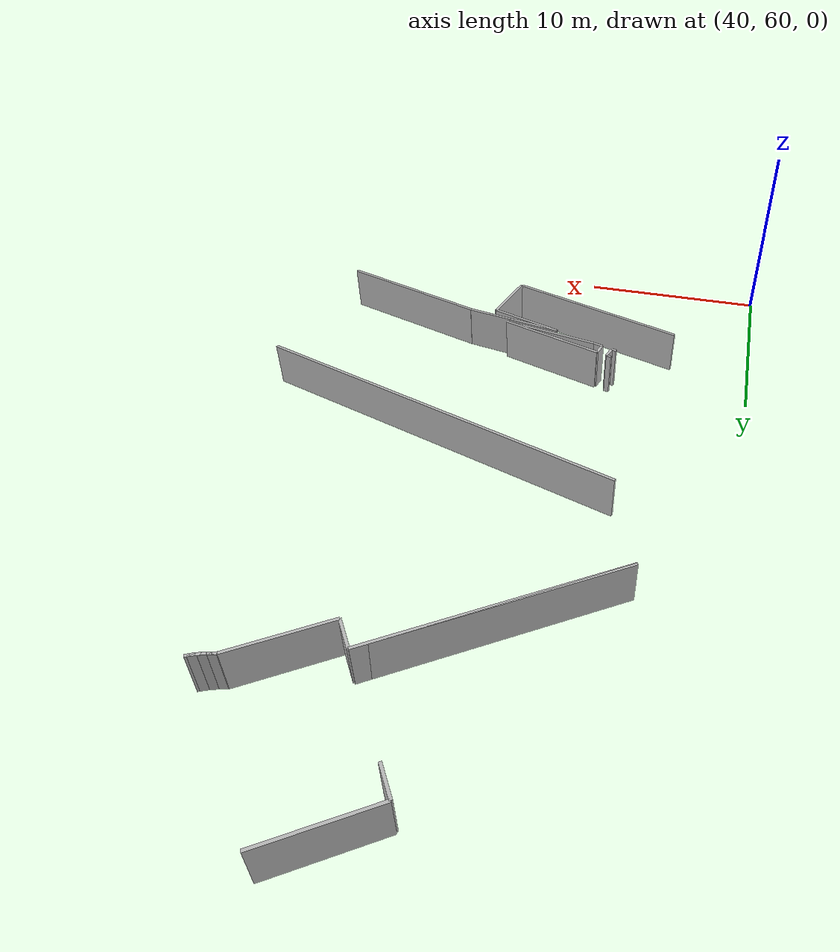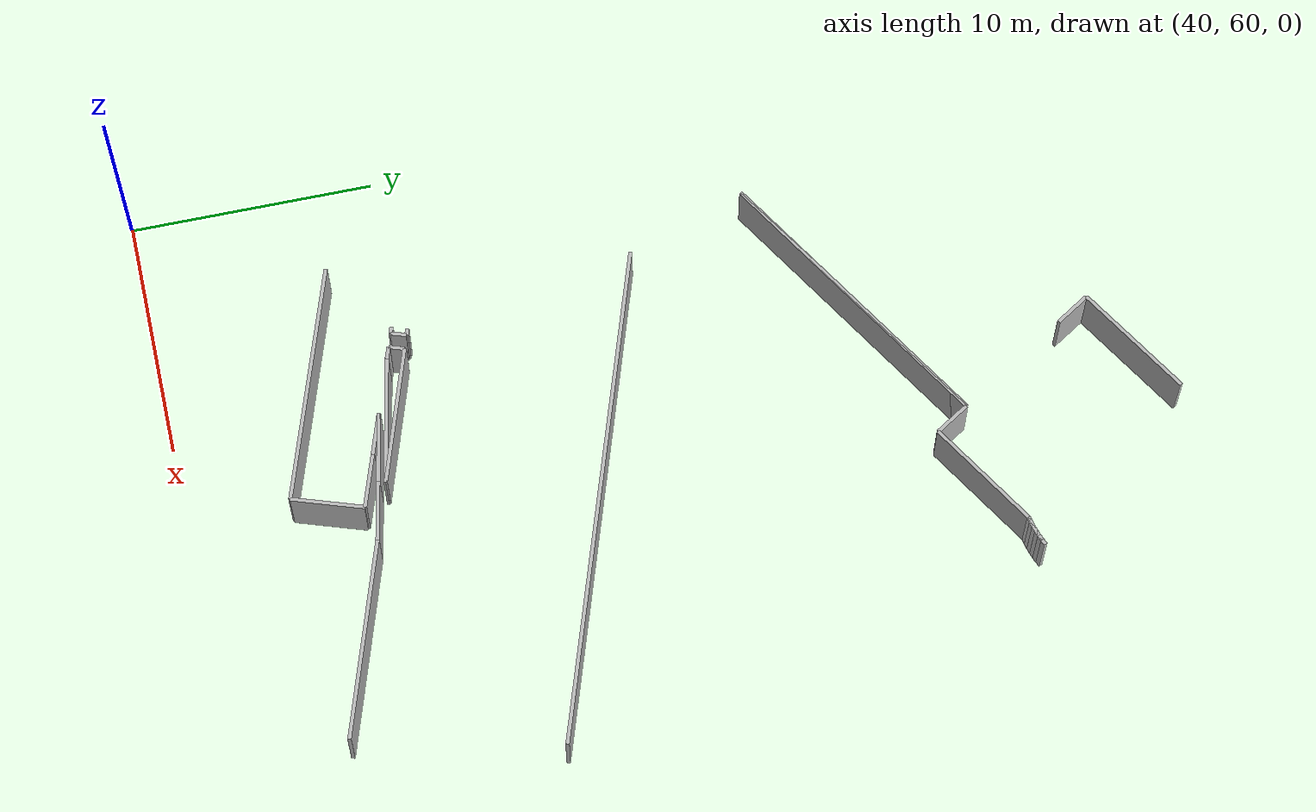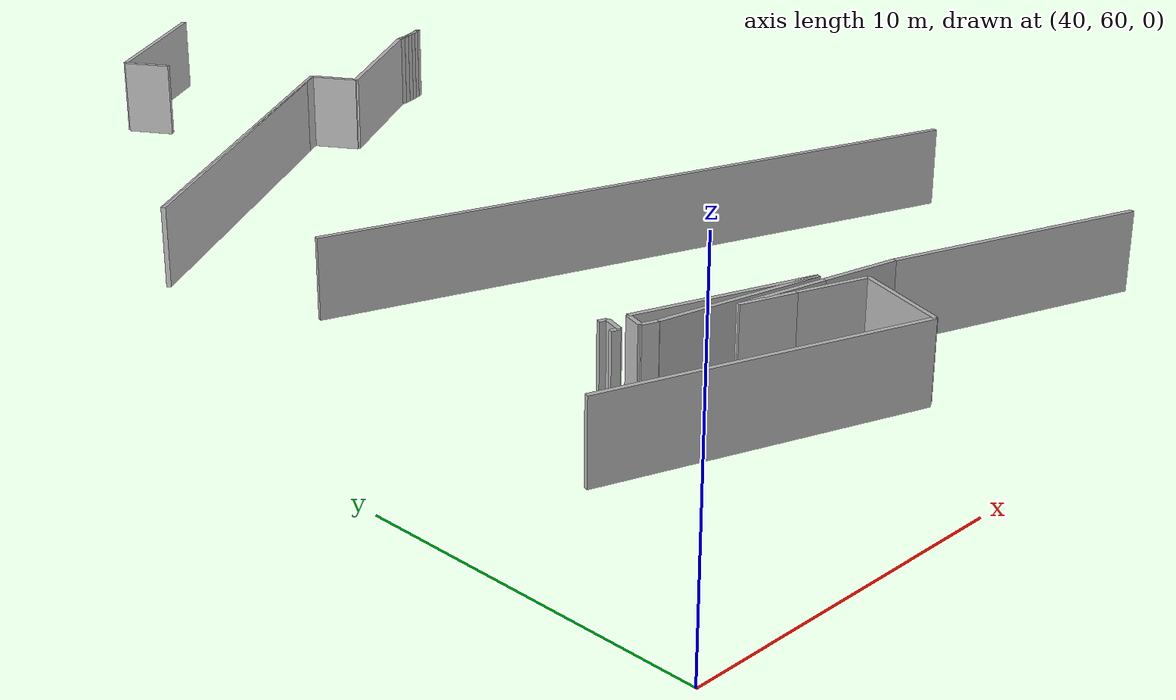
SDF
<sdf version="1.6">
 <model name="sps_0602">
  <static>1</static>
  <allow_auto_disable>0</allow_auto_disable>
  <link name="Wall15">
   <collision name="collision"><geometry><box><size>0.26993 0.15 2.5</size></box></geometry></collision>
   <visual name="visual">
    <geometry><box><size>0.26993 0.15 2.5</size></box></geometry>
    <transparency>0.0</transparency>
   </visual>
   <pose>47.8259 70.2052 1.25 0 0 -0.315673</pose>
  </link>
  <link name="Wall16">
   <collision name="collision"><geometry><box><size>0.649519 0.15 2.5</size></box></geometry></collision>
   <visual name="visual">
    <geometry><box><size>0.649519 0.15 2.5</size></box></geometry>
    <transparency>0.0</transparency>
   </visual>
   <pose>48.4228 69.6688 1.25 0 -0 1.25095</pose>
  </link>
  <link name="Wall109">
   <collision name="collision"><geometry><box><size>0.269889 0.15 2.5</size></box></geometry></collision>
   <visual name="visual">
    <geometry><box><size>0.269889 0.15 2.5</size></box></geometry>
    <transparency>0.0</transparency>
   </visual>
   <pose>47.6243 69.5904 1.25 0 -0 2.8242</pose>
  </link>
  <link name="Wall187">
   <collision name="collision"><geometry><box><size>5.337 0.15 2.5</size></box></geometry></collision>
   <visual name="visual">
    <geometry><box><size>5.337 0.15 2.5</size></box></geometry>
    <transparency>0.0</transparency>
   </visual>
   <pose>51.4278 68.6879 1.25 0 0 -0.19276</pose>
  </link>
  <link name="Wall188">
   <collision name="collision"><geometry><box><size>5.80805 0.15 2.5</size></box></geometry></collision>
   <visual name="visual">
    <geometry><box><size>5.80805 0.15 2.5</size></box></geometry>
    <transparency>0.0</transparency>
   </visual>
   <pose>51.2858 69.0769 1.25 0 0 -0.315167</pose>
  </link>
  <link name="Wall276">
   <collision name="collision"><geometry><box><size>0.514026 0.15 2.5</size></box></geometry></collision>
   <visual name="visual">
    <geometry><box><size>0.514026 0.15 2.5</size></box></geometry>
    <transparency>0.0</transparency>
   </visual>
   <pose>48.5647 69.2798 1.25 0 0 -0.319347</pose>
  </link>
  <link name="Wall343">
   <collision name="collision"><geometry><box><size>3.00012 0.15 2.5</size></box></geometry></collision>
   <visual name="visual">
    <geometry><box><size>3.00012 0.15 2.5</size></box></geometry>
    <transparency>0.0</transparency>
   </visual>
   <pose>54.4389 65.7577 1.25 0 0 -1.89019</pose>
  </link>
  <link name="Wall344">
   <collision name="collision"><geometry><box><size>1.78351 0.15 2.5</size></box></geometry></collision>
   <visual name="visual">
    <geometry><box><size>1.78351 0.15 2.5</size></box></geometry>
    <transparency>0.0</transparency>
   </visual>
   <pose>51.912 68.173 1.25 0 0 -0.319281</pose>
  </link>
  <link name="Wall345">
   <collision name="collision"><geometry><box><size>2.26574 0.15 2.5</size></box></geometry></collision>
   <visual name="visual">
    <geometry><box><size>2.26574 0.15 2.5</size></box></geometry>
    <transparency>0.0</transparency>
   </visual>
   <pose>53.8343 67.5375 1.25 0 0 -0.319281</pose>
  </link>
  <link name="Wall425">
   <collision name="collision"><geometry><box><size>2.92208 0.15 2.5</size></box></geometry></collision>
   <visual name="visual">
    <geometry><box><size>2.92208 0.15 2.5</size></box></geometry>
    <transparency>0.0</transparency>
   </visual>
   <pose>52.4992 68.173 1.25 0 0 -0.192773</pose>
  </link>
  <link name="Wall426">
   <collision name="collision"><geometry><box><size>2.49485 0.15 2.5</size></box></geometry></collision>
   <visual name="visual">
    <geometry><box><size>2.49485 0.15 2.5</size></box></geometry>
    <transparency>0.0</transparency>
   </visual>
   <pose>55.1575 67.6541 1.25 0 0 -0.192773</pose>
  </link>
  <link name="Wall516">
   <collision name="collision"><geometry><box><size>0.647247 0.15 2.5</size></box></geometry></collision>
   <visual name="visual">
    <geometry><box><size>0.647247 0.15 2.5</size></box></geometry>
    <transparency>0.0</transparency>
   </visual>
   <pose>47.8534 69.8558 1.25 0 -0 1.25376</pose>
  </link>
  <link name="Wall517">
   <collision name="collision"><geometry><box><size>13.0031 0.15 2.5</size></box></geometry></collision>
   <visual name="visual">
    <geometry><box><size>13.0031 0.15 2.5</size></box></geometry>
    <transparency>0.0</transparency>
   </visual>
   <pose>50.0687 88.1576 1.25 0 0 -2.58425</pose>
  </link>
  <link name="Wall518">
   <collision name="collision"><geometry><box><size>21.0684 0.15 2.5</size></box></geometry></collision>
   <visual name="visual">
    <geometry><box><size>21.0684 0.15 2.5</size></box></geometry>
    <transparency>0.0</transparency>
   </visual>
   <pose>56.209 76.4408 1.25 0 -0 2.82071</pose>
  </link>
  <link name="Wall597">
   <collision name="collision"><geometry><box><size>10.0429 0.15 2.5</size></box></geometry></collision>
   <visual name="visual">
    <geometry><box><size>10.0429 0.15 2.5</size></box></geometry>
    <transparency>0.0</transparency>
   </visual>
   <pose>49.2002 65.9099 1.25 0 0 -0.319329</pose>
  </link>
  <link name="Wall598">
   <collision name="collision"><geometry><box><size>8.31023 0.15 2.5</size></box></geometry></collision>
   <visual name="visual">
    <geometry><box><size>8.31023 0.15 2.5</size></box></geometry>
    <transparency>0.0</transparency>
   </visual>
   <pose>60.3323 66.127 1.25 0 0 -0.315201</pose>
  </link>
  <link name="Wall2499">
   <collision name="collision"><geometry><box><size>0.220464 0.15 2.5</size></box></geometry></collision>
   <visual name="visual">
    <geometry><box><size>0.220464 0.15 2.5</size></box></geometry>
    <transparency>0.0</transparency>
   </visual>
   <pose>61.8748 93.2584 1.25 0 0 -2.71609</pose>
  </link>
  <link name="Wall2500">
   <collision name="collision"><geometry><box><size>0.220209 0.15 2.5</size></box></geometry></collision>
   <visual name="visual">
    <geometry><box><size>0.220209 0.15 2.5</size></box></geometry>
    <transparency>0.0</transparency>
   </visual>
   <pose>61.672 93.1724 1.25 0 0 -2.76495</pose>
  </link>
  <link name="Wall2501">
   <collision name="collision"><geometry><box><size>0.22021 0.15 2.5</size></box></geometry></collision>
   <visual name="visual">
    <geometry><box><size>0.22021 0.15 2.5</size></box></geometry>
    <transparency>0.0</transparency>
   </visual>
   <pose>61.4654 93.0964 1.25 0 0 -2.81309</pose>
  </link>
  <link name="Wall2502">
   <collision name="collision"><geometry><box><size>0.220394 0.15 2.5</size></box></geometry></collision>
   <visual name="visual">
    <geometry><box><size>0.220394 0.15 2.5</size></box></geometry>
    <transparency>0.0</transparency>
   </visual>
   <pose>61.2553 93.0304 1.25 0 0 -2.86128</pose>
  </link>
  <link name="Wall2503">
   <collision name="collision"><geometry><box><size>0.220246 0.15 2.5</size></box></geometry></collision>
   <visual name="visual">
    <geometry><box><size>0.220246 0.15 2.5</size></box></geometry>
    <transparency>0.0</transparency>
   </visual>
   <pose>61.0423 92.9746 1.25 0 0 -2.90979</pose>
  </link>
  <link name="Wall2504">
   <collision name="collision"><geometry><box><size>0.220272 0.15 2.5</size></box></geometry></collision>
   <visual name="visual">
    <geometry><box><size>0.220272 0.15 2.5</size></box></geometry>
    <transparency>0.0</transparency>
   </visual>
   <pose>60.8268 92.9293 1.25 0 0 -2.95909</pose>
  </link>
  <link name="Wall2505">
   <collision name="collision"><geometry><box><size>5.0495 0.15 2.5</size></box></geometry></collision>
   <visual name="visual">
    <geometry><box><size>5.0495 0.15 2.5</size></box></geometry>
    <transparency>0.0</transparency>
   </visual>
   <pose>58.5756 91.5743 1.25 0 0 -2.58444</pose>
  </link>
  <link name="Wall2506">
   <collision name="collision"><geometry><box><size>1.59951 0.15 2.5</size></box></geometry></collision>
   <visual name="visual">
    <geometry><box><size>1.59951 0.15 2.5</size></box></geometry>
    <transparency>0.0</transparency>
   </visual>
   <pose>56.0095 90.9179 1.25 0 -0 2.12839</pose>
  </link>
  <link name="Wall2507">
   <collision name="collision"><geometry><box><size>13.0033 0.15 2.5</size></box></geometry></collision>
   <visual name="visual">
    <geometry><box><size>13.0033 0.15 2.5</size></box></geometry>
    <transparency>0.0</transparency>
   </visual>
   <pose>50.0687 88.1574 1.25 0 0 -2.58422</pose>
  </link>
  <link name="Wall2510">
   <collision name="collision"><geometry><box><size>1.60099 0.15 2.5</size></box></geometry></collision>
   <visual name="visual">
    <geometry><box><size>1.60099 0.15 2.5</size></box></geometry>
    <transparency>0.0</transparency>
   </visual>
   <pose>52.3608 96.7741 1.25 0 -0 2.12799</pose>
  </link>
  <link name="Wall2511">
   <collision name="collision"><geometry><box><size>5.31967 0.15 2.5</size></box></geometry></collision>
   <visual name="visual">
    <geometry><box><size>5.31967 0.15 2.5</size></box></geometry>
    <transparency>0.0</transparency>
   </visual>
   <pose>54.1951 98.8599 1.25 0 -0 0.557134</pose>
  </link>
  <link name="Wall4806">
   <collision name="collision"><geometry><box><size>0.403265 0.15 2.5</size></box></geometry></collision>
   <visual name="visual">
    <geometry><box><size>0.403265 0.15 2.5</size></box></geometry>
    <transparency>0.0</transparency>
   </visual>
   <pose>61.6858 93.1858 1.25 0 0 -2.75681</pose>
  </link>
  <link name="Wall4807">
   <collision name="collision"><geometry><box><size>0.403333 0.15 2.5</size></box></geometry></collision>
   <visual name="visual">
    <geometry><box><size>0.403333 0.15 2.5</size></box></geometry>
    <transparency>0.0</transparency>
   </visual>
   <pose>61.306 93.0513 1.25 0 0 -2.84569</pose>
  </link>
  <link name="Wall4808">
   <collision name="collision"><geometry><box><size>0.403266 0.15 2.5</size></box></geometry></collision>
   <visual name="visual">
    <geometry><box><size>0.403266 0.15 2.5</size></box></geometry>
    <transparency>0.0</transparency>
   </visual>
   <pose>60.9158 92.9509 1.25 0 0 -2.93381</pose>
  </link>
 </model>
</sdf>
